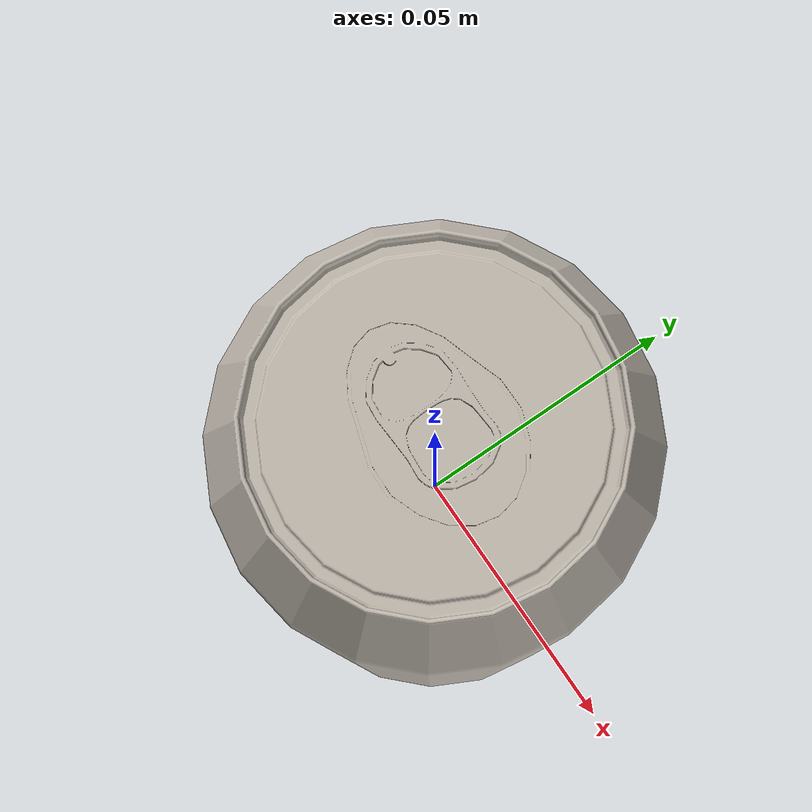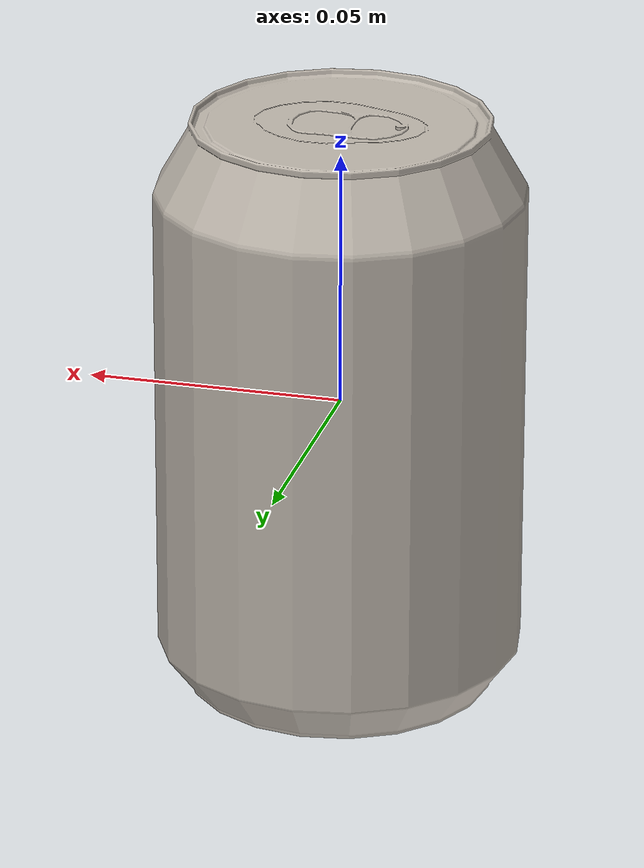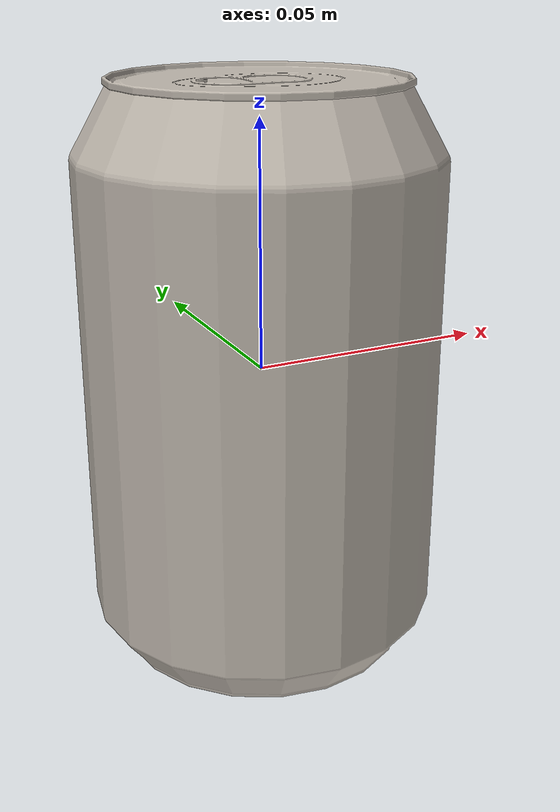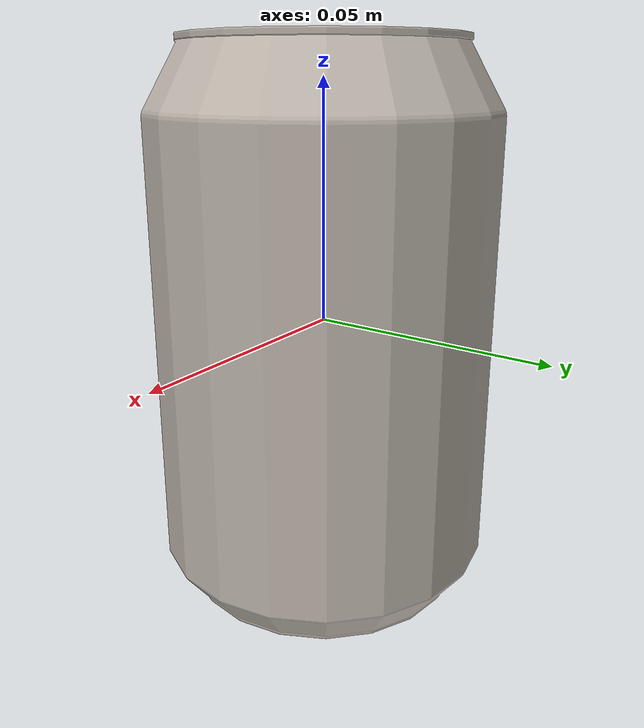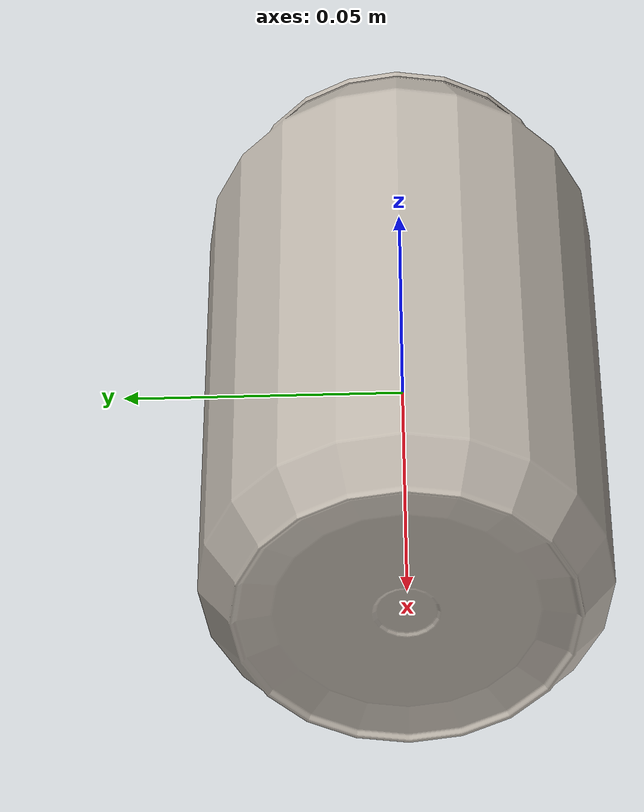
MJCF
<mujoco model="cup_2">
  <asset>
    <mesh file="visual/model_normalized_0.obj" name="cup_2_model_normalized_0_vis" scale="0.11499999999999996 0.11499999999999996 0.11499999999999996" refquat="1.0 0.0 0.0 0.0" />
    <mesh file="collision/model_normalized_collision_22.obj" name="cup_2_model_normalized_collision_22._coll" scale="0.11499999999999996 0.11499999999999996 0.11499999999999996" refquat="1.0 0.0 0.0 0.0" />
    <mesh file="collision/model_normalized_collision_23.obj" name="cup_2_model_normalized_collision_23._coll" scale="0.11499999999999996 0.11499999999999996 0.11499999999999996" refquat="1.0 0.0 0.0 0.0" />
    <mesh file="collision/model_normalized_collision_21.obj" name="cup_2_model_normalized_collision_21._coll" scale="0.11499999999999996 0.11499999999999996 0.11499999999999996" refquat="1.0 0.0 0.0 0.0" />
    <mesh file="collision/model_normalized_collision_20.obj" name="cup_2_model_normalized_collision_20._coll" scale="0.11499999999999996 0.11499999999999996 0.11499999999999996" refquat="1.0 0.0 0.0 0.0" />
    <mesh file="collision/model_normalized_collision_24.obj" name="cup_2_model_normalized_collision_24._coll" scale="0.11499999999999996 0.11499999999999996 0.11499999999999996" refquat="1.0 0.0 0.0 0.0" />
    <mesh file="collision/model_normalized_collision_30.obj" name="cup_2_model_normalized_collision_30._coll" scale="0.11499999999999996 0.11499999999999996 0.11499999999999996" refquat="1.0 0.0 0.0 0.0" />
    <mesh file="collision/model_normalized_collision_18.obj" name="cup_2_model_normalized_collision_18._coll" scale="0.11499999999999996 0.11499999999999996 0.11499999999999996" refquat="1.0 0.0 0.0 0.0" />
    <mesh file="collision/model_normalized_collision_19.obj" name="cup_2_model_normalized_collision_19._coll" scale="0.11499999999999996 0.11499999999999996 0.11499999999999996" refquat="1.0 0.0 0.0 0.0" />
    <mesh file="collision/model_normalized_collision_31.obj" name="cup_2_model_normalized_collision_31._coll" scale="0.11499999999999996 0.11499999999999996 0.11499999999999996" refquat="1.0 0.0 0.0 0.0" />
    <mesh file="collision/model_normalized_collision_25.obj" name="cup_2_model_normalized_collision_25._coll" scale="0.11499999999999996 0.11499999999999996 0.11499999999999996" refquat="1.0 0.0 0.0 0.0" />
    <mesh file="collision/model_normalized_collision_27.obj" name="cup_2_model_normalized_collision_27._coll" scale="0.11499999999999996 0.11499999999999996 0.11499999999999996" refquat="1.0 0.0 0.0 0.0" />
    <mesh file="collision/model_normalized_collision_26.obj" name="cup_2_model_normalized_collision_26._coll" scale="0.11499999999999996 0.11499999999999996 0.11499999999999996" refquat="1.0 0.0 0.0 0.0" />
    <mesh file="collision/model_normalized_collision_9.obj" name="cup_2_model_normalized_collision_9._coll" scale="0.11499999999999996 0.11499999999999996 0.11499999999999996" refquat="1.0 0.0 0.0 0.0" />
    <mesh file="collision/model_normalized_collision_8.obj" name="cup_2_model_normalized_collision_8._coll" scale="0.11499999999999996 0.11499999999999996 0.11499999999999996" refquat="1.0 0.0 0.0 0.0" />
    <mesh file="collision/model_normalized_collision_6.obj" name="cup_2_model_normalized_collision_6._coll" scale="0.11499999999999996 0.11499999999999996 0.11499999999999996" refquat="1.0 0.0 0.0 0.0" />
    <mesh file="collision/model_normalized_collision_7.obj" name="cup_2_model_normalized_collision_7._coll" scale="0.11499999999999996 0.11499999999999996 0.11499999999999996" refquat="1.0 0.0 0.0 0.0" />
    <mesh file="collision/model_normalized_collision_5.obj" name="cup_2_model_normalized_collision_5._coll" scale="0.11499999999999996 0.11499999999999996 0.11499999999999996" refquat="1.0 0.0 0.0 0.0" />
    <mesh file="collision/model_normalized_collision_4.obj" name="cup_2_model_normalized_collision_4._coll" scale="0.11499999999999996 0.11499999999999996 0.11499999999999996" refquat="1.0 0.0 0.0 0.0" />
    <mesh file="collision/model_normalized_collision_0.obj" name="cup_2_model_normalized_collision_0._coll" scale="0.11499999999999996 0.11499999999999996 0.11499999999999996" refquat="1.0 0.0 0.0 0.0" />
    <mesh file="collision/model_normalized_collision_1.obj" name="cup_2_model_normalized_collision_1._coll" scale="0.11499999999999996 0.11499999999999996 0.11499999999999996" refquat="1.0 0.0 0.0 0.0" />
    <mesh file="collision/model_normalized_collision_3.obj" name="cup_2_model_normalized_collision_3._coll" scale="0.11499999999999996 0.11499999999999996 0.11499999999999996" refquat="1.0 0.0 0.0 0.0" />
    <mesh file="collision/model_normalized_collision_2.obj" name="cup_2_model_normalized_collision_2._coll" scale="0.11499999999999996 0.11499999999999996 0.11499999999999996" refquat="1.0 0.0 0.0 0.0" />
    <mesh file="collision/model_normalized_collision_17.obj" name="cup_2_model_normalized_collision_17._coll" scale="0.11499999999999996 0.11499999999999996 0.11499999999999996" refquat="1.0 0.0 0.0 0.0" />
    <mesh file="collision/model_normalized_collision_16.obj" name="cup_2_model_normalized_collision_16._coll" scale="0.11499999999999996 0.11499999999999996 0.11499999999999996" refquat="1.0 0.0 0.0 0.0" />
    <mesh file="collision/model_normalized_collision_28.obj" name="cup_2_model_normalized_collision_28._coll" scale="0.11499999999999996 0.11499999999999996 0.11499999999999996" refquat="1.0 0.0 0.0 0.0" />
    <mesh file="collision/model_normalized_collision_14.obj" name="cup_2_model_normalized_collision_14._coll" scale="0.11499999999999996 0.11499999999999996 0.11499999999999996" refquat="1.0 0.0 0.0 0.0" />
    <mesh file="collision/model_normalized_collision_15.obj" name="cup_2_model_normalized_collision_15._coll" scale="0.11499999999999996 0.11499999999999996 0.11499999999999996" refquat="1.0 0.0 0.0 0.0" />
    <mesh file="collision/model_normalized_collision_29.obj" name="cup_2_model_normalized_collision_29._coll" scale="0.11499999999999996 0.11499999999999996 0.11499999999999996" refquat="1.0 0.0 0.0 0.0" />
    <mesh file="collision/model_normalized_collision_11.obj" name="cup_2_model_normalized_collision_11._coll" scale="0.11499999999999996 0.11499999999999996 0.11499999999999996" refquat="1.0 0.0 0.0 0.0" />
    <mesh file="collision/model_normalized_collision_10.obj" name="cup_2_model_normalized_collision_10._coll" scale="0.11499999999999996 0.11499999999999996 0.11499999999999996" refquat="1.0 0.0 0.0 0.0" />
    <mesh file="collision/model_normalized_collision_12.obj" name="cup_2_model_normalized_collision_12._coll" scale="0.11499999999999996 0.11499999999999996 0.11499999999999996" refquat="1.0 0.0 0.0 0.0" />
    <mesh file="collision/model_normalized_collision_13.obj" name="cup_2_model_normalized_collision_13._coll" scale="0.11499999999999996 0.11499999999999996 0.11499999999999996" refquat="1.0 0.0 0.0 0.0" />
    <texture type="2d" name="cup_2_image0" file="visual/image0.png" />
    <material name="cup_2_lambert3SG" texture="cup_2_image0" specular="0.5" shininess="0.0" />
  </asset>
  <worldbody>
    <body>
      <joint name="cup_2_object_joint" type="free" damping="1." /><body name="cup_2_object">
        <geom solimp="0.998 0.998 0.001" solref="0.001 1" density="300" friction="0.95 0.3 0.1" type="mesh" mesh="cup_2_model_normalized_0_vis" conaffinity="0" contype="0" group="1" material="cup_2_lambert3SG" />
        <geom solimp="0.998 0.998 0.001" solref="0.001 1" density="300" friction="0.95 0.3 0.1" type="mesh" mesh="cup_2_model_normalized_collision_22._coll" group="0" rgba="0.8 0.8 0.8 0.0" />
        <geom solimp="0.998 0.998 0.001" solref="0.001 1" density="300" friction="0.95 0.3 0.1" type="mesh" mesh="cup_2_model_normalized_collision_23._coll" group="0" rgba="0.8 0.8 0.8 0.0" />
        <geom solimp="0.998 0.998 0.001" solref="0.001 1" density="300" friction="0.95 0.3 0.1" type="mesh" mesh="cup_2_model_normalized_collision_21._coll" group="0" rgba="0.8 0.8 0.8 0.0" />
        <geom solimp="0.998 0.998 0.001" solref="0.001 1" density="300" friction="0.95 0.3 0.1" type="mesh" mesh="cup_2_model_normalized_collision_20._coll" group="0" rgba="0.8 0.8 0.8 0.0" />
        <geom solimp="0.998 0.998 0.001" solref="0.001 1" density="300" friction="0.95 0.3 0.1" type="mesh" mesh="cup_2_model_normalized_collision_24._coll" group="0" rgba="0.8 0.8 0.8 0.0" />
        <geom solimp="0.998 0.998 0.001" solref="0.001 1" density="300" friction="0.95 0.3 0.1" type="mesh" mesh="cup_2_model_normalized_collision_30._coll" group="0" rgba="0.8 0.8 0.8 0.0" />
        <geom solimp="0.998 0.998 0.001" solref="0.001 1" density="300" friction="0.95 0.3 0.1" type="mesh" mesh="cup_2_model_normalized_collision_18._coll" group="0" rgba="0.8 0.8 0.8 0.0" />
        <geom solimp="0.998 0.998 0.001" solref="0.001 1" density="300" friction="0.95 0.3 0.1" type="mesh" mesh="cup_2_model_normalized_collision_19._coll" group="0" rgba="0.8 0.8 0.8 0.0" />
        <geom solimp="0.998 0.998 0.001" solref="0.001 1" density="300" friction="0.95 0.3 0.1" type="mesh" mesh="cup_2_model_normalized_collision_31._coll" group="0" rgba="0.8 0.8 0.8 0.0" />
        <geom solimp="0.998 0.998 0.001" solref="0.001 1" density="300" friction="0.95 0.3 0.1" type="mesh" mesh="cup_2_model_normalized_collision_25._coll" group="0" rgba="0.8 0.8 0.8 0.0" />
        <geom solimp="0.998 0.998 0.001" solref="0.001 1" density="300" friction="0.95 0.3 0.1" type="mesh" mesh="cup_2_model_normalized_collision_27._coll" group="0" rgba="0.8 0.8 0.8 0.0" />
        <geom solimp="0.998 0.998 0.001" solref="0.001 1" density="300" friction="0.95 0.3 0.1" type="mesh" mesh="cup_2_model_normalized_collision_26._coll" group="0" rgba="0.8 0.8 0.8 0.0" />
        <geom solimp="0.998 0.998 0.001" solref="0.001 1" density="300" friction="0.95 0.3 0.1" type="mesh" mesh="cup_2_model_normalized_collision_9._coll" group="0" rgba="0.8 0.8 0.8 0.0" />
        <geom solimp="0.998 0.998 0.001" solref="0.001 1" density="300" friction="0.95 0.3 0.1" type="mesh" mesh="cup_2_model_normalized_collision_8._coll" group="0" rgba="0.8 0.8 0.8 0.0" />
        <geom solimp="0.998 0.998 0.001" solref="0.001 1" density="300" friction="0.95 0.3 0.1" type="mesh" mesh="cup_2_model_normalized_collision_6._coll" group="0" rgba="0.8 0.8 0.8 0.0" />
        <geom solimp="0.998 0.998 0.001" solref="0.001 1" density="300" friction="0.95 0.3 0.1" type="mesh" mesh="cup_2_model_normalized_collision_7._coll" group="0" rgba="0.8 0.8 0.8 0.0" />
        <geom solimp="0.998 0.998 0.001" solref="0.001 1" density="300" friction="0.95 0.3 0.1" type="mesh" mesh="cup_2_model_normalized_collision_5._coll" group="0" rgba="0.8 0.8 0.8 0.0" />
        <geom solimp="0.998 0.998 0.001" solref="0.001 1" density="300" friction="0.95 0.3 0.1" type="mesh" mesh="cup_2_model_normalized_collision_4._coll" group="0" rgba="0.8 0.8 0.8 0.0" />
        <geom solimp="0.998 0.998 0.001" solref="0.001 1" density="300" friction="0.95 0.3 0.1" type="mesh" mesh="cup_2_model_normalized_collision_0._coll" group="0" rgba="0.8 0.8 0.8 0.0" />
        <geom solimp="0.998 0.998 0.001" solref="0.001 1" density="300" friction="0.95 0.3 0.1" type="mesh" mesh="cup_2_model_normalized_collision_1._coll" group="0" rgba="0.8 0.8 0.8 0.0" />
        <geom solimp="0.998 0.998 0.001" solref="0.001 1" density="300" friction="0.95 0.3 0.1" type="mesh" mesh="cup_2_model_normalized_collision_3._coll" group="0" rgba="0.8 0.8 0.8 0.0" />
        <geom solimp="0.998 0.998 0.001" solref="0.001 1" density="300" friction="0.95 0.3 0.1" type="mesh" mesh="cup_2_model_normalized_collision_2._coll" group="0" rgba="0.8 0.8 0.8 0.0" />
        <geom solimp="0.998 0.998 0.001" solref="0.001 1" density="300" friction="0.95 0.3 0.1" type="mesh" mesh="cup_2_model_normalized_collision_17._coll" group="0" rgba="0.8 0.8 0.8 0.0" />
        <geom solimp="0.998 0.998 0.001" solref="0.001 1" density="300" friction="0.95 0.3 0.1" type="mesh" mesh="cup_2_model_normalized_collision_16._coll" group="0" rgba="0.8 0.8 0.8 0.0" />
        <geom solimp="0.998 0.998 0.001" solref="0.001 1" density="300" friction="0.95 0.3 0.1" type="mesh" mesh="cup_2_model_normalized_collision_28._coll" group="0" rgba="0.8 0.8 0.8 0.0" />
        <geom solimp="0.998 0.998 0.001" solref="0.001 1" density="300" friction="0.95 0.3 0.1" type="mesh" mesh="cup_2_model_normalized_collision_14._coll" group="0" rgba="0.8 0.8 0.8 0.0" />
        <geom solimp="0.998 0.998 0.001" solref="0.001 1" density="300" friction="0.95 0.3 0.1" type="mesh" mesh="cup_2_model_normalized_collision_15._coll" group="0" rgba="0.8 0.8 0.8 0.0" />
        <geom solimp="0.998 0.998 0.001" solref="0.001 1" density="300" friction="0.95 0.3 0.1" type="mesh" mesh="cup_2_model_normalized_collision_29._coll" group="0" rgba="0.8 0.8 0.8 0.0" />
        <geom solimp="0.998 0.998 0.001" solref="0.001 1" density="300" friction="0.95 0.3 0.1" type="mesh" mesh="cup_2_model_normalized_collision_11._coll" group="0" rgba="0.8 0.8 0.8 0.0" />
        <geom solimp="0.998 0.998 0.001" solref="0.001 1" density="300" friction="0.95 0.3 0.1" type="mesh" mesh="cup_2_model_normalized_collision_10._coll" group="0" rgba="0.8 0.8 0.8 0.0" />
        <geom solimp="0.998 0.998 0.001" solref="0.001 1" density="300" friction="0.95 0.3 0.1" type="mesh" mesh="cup_2_model_normalized_collision_12._coll" group="0" rgba="0.8 0.8 0.8 0.0" />
        <geom solimp="0.998 0.998 0.001" solref="0.001 1" density="300" friction="0.95 0.3 0.1" type="mesh" mesh="cup_2_model_normalized_collision_13._coll" group="0" rgba="0.8 0.8 0.8 0.0" />
      </body>

    </body>
  </worldbody>
</mujoco>
